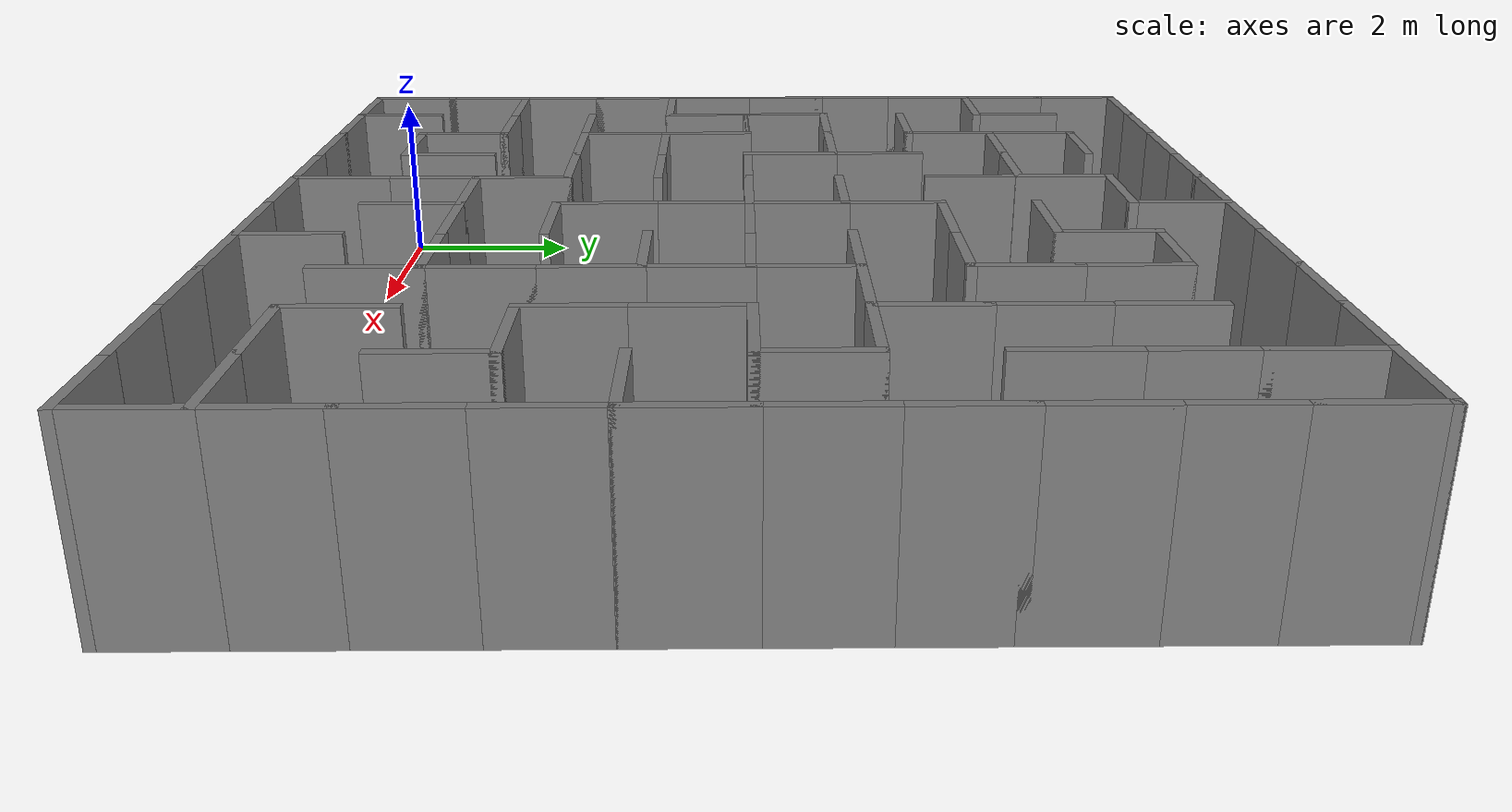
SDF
<sdf version="1.7">
 <model name="procedural_maze">
  <static>true</static>
  <link name="walls">
   <visual name="wall_N_0_vis">
    <pose>-0.5 0.0 1.0 0 0 0</pose>
    <geometry><box><size>0.1 1.1 2.0</size></box></geometry>
    <material>
     <ambient>0.5 0.5 0.5 1</ambient>
     <diffuse>0.5 0.5 0.5 1</diffuse>
     <specular>0.1 0.1 0.1 1</specular>
    </material>
   </visual>
   <collision name="wall_N_0_col">
    <pose>-0.5 0.0 1.0 0 0 0</pose>
    <geometry><box><size>0.1 1.1 2.0</size></box></geometry>
   </collision>
   <visual name="wall_W_1_vis">
    <pose>0.0 -0.5 1.0 0 0 0</pose>
    <geometry><box><size>1.1 0.1 2.0</size></box></geometry>
    <material>
     <ambient>0.5 0.5 0.5 1</ambient>
     <diffuse>0.5 0.5 0.5 1</diffuse>
     <specular>0.1 0.1 0.1 1</specular>
    </material>
   </visual>
   <collision name="wall_W_1_col">
    <pose>0.0 -0.5 1.0 0 0 0</pose>
    <geometry><box><size>1.1 0.1 2.0</size></box></geometry>
   </collision>
   <visual name="wall_S_2_vis">
    <pose>0.5 0.0 1.0 0 0 0</pose>
    <geometry><box><size>0.1 1.1 2.0</size></box></geometry>
    <material>
     <ambient>0.5 0.5 0.5 1</ambient>
     <diffuse>0.5 0.5 0.5 1</diffuse>
     <specular>0.1 0.1 0.1 1</specular>
    </material>
   </visual>
   <collision name="wall_S_2_col">
    <pose>0.5 0.0 1.0 0 0 0</pose>
    <geometry><box><size>0.1 1.1 2.0</size></box></geometry>
   </collision>
   <visual name="wall_N_3_vis">
    <pose>-0.5 1.0 1.0 0 0 0</pose>
    <geometry><box><size>0.1 1.1 2.0</size></box></geometry>
    <material>
     <ambient>0.5 0.5 0.5 1</ambient>
     <diffuse>0.5 0.5 0.5 1</diffuse>
     <specular>0.1 0.1 0.1 1</specular>
    </material>
   </visual>
   <collision name="wall_N_3_col">
    <pose>-0.5 1.0 1.0 0 0 0</pose>
    <geometry><box><size>0.1 1.1 2.0</size></box></geometry>
   </collision>
   <visual name="wall_E_4_vis">
    <pose>0.0 1.5 1.0 0 0 0</pose>
    <geometry><box><size>1.1 0.1 2.0</size></box></geometry>
    <material>
     <ambient>0.5 0.5 0.5 1</ambient>
     <diffuse>0.5 0.5 0.5 1</diffuse>
     <specular>0.1 0.1 0.1 1</specular>
    </material>
   </visual>
   <collision name="wall_E_4_col">
    <pose>0.0 1.5 1.0 0 0 0</pose>
    <geometry><box><size>1.1 0.1 2.0</size></box></geometry>
   </collision>
   <visual name="wall_N_5_vis">
    <pose>-0.5 2.0 1.0 0 0 0</pose>
    <geometry><box><size>0.1 1.1 2.0</size></box></geometry>
    <material>
     <ambient>0.5 0.5 0.5 1</ambient>
     <diffuse>0.5 0.5 0.5 1</diffuse>
     <specular>0.1 0.1 0.1 1</specular>
    </material>
   </visual>
   <collision name="wall_N_5_col">
    <pose>-0.5 2.0 1.0 0 0 0</pose>
    <geometry><box><size>0.1 1.1 2.0</size></box></geometry>
   </collision>
   <visual name="wall_N_6_vis">
    <pose>-0.5 3.0 1.0 0 0 0</pose>
    <geometry><box><size>0.1 1.1 2.0</size></box></geometry>
    <material>
     <ambient>0.5 0.5 0.5 1</ambient>
     <diffuse>0.5 0.5 0.5 1</diffuse>
     <specular>0.1 0.1 0.1 1</specular>
    </material>
   </visual>
   <collision name="wall_N_6_col">
    <pose>-0.5 3.0 1.0 0 0 0</pose>
    <geometry><box><size>0.1 1.1 2.0</size></box></geometry>
   </collision>
   <visual name="wall_E_7_vis">
    <pose>0.0 3.5 1.0 0 0 0</pose>
    <geometry><box><size>1.1 0.1 2.0</size></box></geometry>
    <material>
     <ambient>0.5 0.5 0.5 1</ambient>
     <diffuse>0.5 0.5 0.5 1</diffuse>
     <specular>0.1 0.1 0.1 1</specular>
    </material>
   </visual>
   <collision name="wall_E_7_col">
    <pose>0.0 3.5 1.0 0 0 0</pose>
    <geometry><box><size>1.1 0.1 2.0</size></box></geometry>
   </collision>
   <visual name="wall_N_8_vis">
    <pose>-0.5 4.0 1.0 0 0 0</pose>
    <geometry><box><size>0.1 1.1 2.0</size></box></geometry>
    <material>
     <ambient>0.5 0.5 0.5 1</ambient>
     <diffuse>0.5 0.5 0.5 1</diffuse>
     <specular>0.1 0.1 0.1 1</specular>
    </material>
   </visual>
   <collision name="wall_N_8_col">
    <pose>-0.5 4.0 1.0 0 0 0</pose>
    <geometry><box><size>0.1 1.1 2.0</size></box></geometry>
   </collision>
   <visual name="wall_S_9_vis">
    <pose>0.5 4.0 1.0 0 0 0</pose>
    <geometry><box><size>0.1 1.1 2.0</size></box></geometry>
    <material>
     <ambient>0.5 0.5 0.5 1</ambient>
     <diffuse>0.5 0.5 0.5 1</diffuse>
     <specular>0.1 0.1 0.1 1</specular>
    </material>
   </visual>
   <collision name="wall_S_9_col">
    <pose>0.5 4.0 1.0 0 0 0</pose>
    <geometry><box><size>0.1 1.1 2.0</size></box></geometry>
   </collision>
   <visual name="wall_N_10_vis">
    <pose>-0.5 5.0 1.0 0 0 0</pose>
    <geometry><box><size>0.1 1.1 2.0</size></box></geometry>
    <material>
     <ambient>0.5 0.5 0.5 1</ambient>
     <diffuse>0.5 0.5 0.5 1</diffuse>
     <specular>0.1 0.1 0.1 1</specular>
    </material>
   </visual>
   <collision name="wall_N_10_col">
    <pose>-0.5 5.0 1.0 0 0 0</pose>
    <geometry><box><size>0.1 1.1 2.0</size></box></geometry>
   </collision>
   <visual name="wall_S_11_vis">
    <pose>0.5 5.0 1.0 0 0 0</pose>
    <geometry><box><size>0.1 1.1 2.0</size></box></geometry>
    <material>
     <ambient>0.5 0.5 0.5 1</ambient>
     <diffuse>0.5 0.5 0.5 1</diffuse>
     <specular>0.1 0.1 0.1 1</specular>
    </material>
   </visual>
   <collision name="wall_S_11_col">
    <pose>0.5 5.0 1.0 0 0 0</pose>
    <geometry><box><size>0.1 1.1 2.0</size></box></geometry>
   </collision>
   <visual name="wall_N_12_vis">
    <pose>-0.5 6.0 1.0 0 0 0</pose>
    <geometry><box><size>0.1 1.1 2.0</size></box></geometry>
    <material>
     <ambient>0.5 0.5 0.5 1</ambient>
     <diffuse>0.5 0.5 0.5 1</diffuse>
     <specular>0.1 0.1 0.1 1</specular>
    </material>
   </visual>
   <collision name="wall_N_12_col">
    <pose>-0.5 6.0 1.0 0 0 0</pose>
    <geometry><box><size>0.1 1.1 2.0</size></box></geometry>
   </collision>
   <visual name="wall_N_13_vis">
    <pose>-0.5 7.0 1.0 0 0 0</pose>
    <geometry><box><size>0.1 1.1 2.0</size></box></geometry>
    <material>
     <ambient>0.5 0.5 0.5 1</ambient>
     <diffuse>0.5 0.5 0.5 1</diffuse>
     <specular>0.1 0.1 0.1 1</specular>
    </material>
   </visual>
   <collision name="wall_N_13_col">
    <pose>-0.5 7.0 1.0 0 0 0</pose>
    <geometry><box><size>0.1 1.1 2.0</size></box></geometry>
   </collision>
   <visual name="wall_E_14_vis">
    <pose>0.0 7.5 1.0 0 0 0</pose>
    <geometry><box><size>1.1 0.1 2.0</size></box></geometry>
    <material>
     <ambient>0.5 0.5 0.5 1</ambient>
     <diffuse>0.5 0.5 0.5 1</diffuse>
     <specular>0.1 0.1 0.1 1</specular>
    </material>
   </visual>
   <collision name="wall_E_14_col">
    <pose>0.0 7.5 1.0 0 0 0</pose>
    <geometry><box><size>1.1 0.1 2.0</size></box></geometry>
   </collision>
   <visual name="wall_N_15_vis">
    <pose>-0.5 8.0 1.0 0 0 0</pose>
    <geometry><box><size>0.1 1.1 2.0</size></box></geometry>
    <material>
     <ambient>0.5 0.5 0.5 1</ambient>
     <diffuse>0.5 0.5 0.5 1</diffuse>
     <specular>0.1 0.1 0.1 1</specular>
    </material>
   </visual>
   <collision name="wall_N_15_col">
    <pose>-0.5 8.0 1.0 0 0 0</pose>
    <geometry><box><size>0.1 1.1 2.0</size></box></geometry>
   </collision>
   <visual name="wall_S_16_vis">
    <pose>0.5 8.0 1.0 0 0 0</pose>
    <geometry><box><size>0.1 1.1 2.0</size></box></geometry>
    <material>
     <ambient>0.5 0.5 0.5 1</ambient>
     <diffuse>0.5 0.5 0.5 1</diffuse>
     <specular>0.1 0.1 0.1 1</specular>
    </material>
   </visual>
   <collision name="wall_S_16_col">
    <pose>0.5 8.0 1.0 0 0 0</pose>
    <geometry><box><size>0.1 1.1 2.0</size></box></geometry>
   </collision>
   <visual name="wall_N_17_vis">
    <pose>-0.5 9.0 1.0 0 0 0</pose>
    <geometry><box><size>0.1 1.1 2.0</size></box></geometry>
    <material>
     <ambient>0.5 0.5 0.5 1</ambient>
     <diffuse>0.5 0.5 0.5 1</diffuse>
     <specular>0.1 0.1 0.1 1</specular>
    </material>
   </visual>
   <collision name="wall_N_17_col">
    <pose>-0.5 9.0 1.0 0 0 0</pose>
    <geometry><box><size>0.1 1.1 2.0</size></box></geometry>
   </collision>
   <visual name="wall_E_18_vis">
    <pose>0.0 9.5 1.0 0 0 0</pose>
    <geometry><box><size>1.1 0.1 2.0</size></box></geometry>
    <material>
     <ambient>0.5 0.5 0.5 1</ambient>
     <diffuse>0.5 0.5 0.5 1</diffuse>
     <specular>0.1 0.1 0.1 1</specular>
    </material>
   </visual>
   <collision name="wall_E_18_col">
    <pose>0.0 9.5 1.0 0 0 0</pose>
    <geometry><box><size>1.1 0.1 2.0</size></box></geometry>
   </collision>
   <visual name="wall_W_19_vis">
    <pose>1.0 -0.5 1.0 0 0 0</pose>
    <geometry><box><size>1.1 0.1 2.0</size></box></geometry>
    <material>
     <ambient>0.5 0.5 0.5 1</ambient>
     <diffuse>0.5 0.5 0.5 1</diffuse>
     <specular>0.1 0.1 0.1 1</specular>
    </material>
   </visual>
   <collision name="wall_W_19_col">
    <pose>1.0 -0.5 1.0 0 0 0</pose>
    <geometry><box><size>1.1 0.1 2.0</size></box></geometry>
   </collision>
   <visual name="wall_S_20_vis">
    <pose>1.5 1.0 1.0 0 0 0</pose>
    <geometry><box><size>0.1 1.1 2.0</size></box></geometry>
    <material>
     <ambient>0.5 0.5 0.5 1</ambient>
     <diffuse>0.5 0.5 0.5 1</diffuse>
     <specular>0.1 0.1 0.1 1</specular>
    </material>
   </visual>
   <collision name="wall_S_20_col">
    <pose>1.5 1.0 1.0 0 0 0</pose>
    <geometry><box><size>0.1 1.1 2.0</size></box></geometry>
   </collision>
   <visual name="wall_E_21_vis">
    <pose>1.0 1.5 1.0 0 0 0</pose>
    <geometry><box><size>1.1 0.1 2.0</size></box></geometry>
    <material>
     <ambient>0.5 0.5 0.5 1</ambient>
     <diffuse>0.5 0.5 0.5 1</diffuse>
     <specular>0.1 0.1 0.1 1</specular>
    </material>
   </visual>
   <collision name="wall_E_21_col">
    <pose>1.0 1.5 1.0 0 0 0</pose>
    <geometry><box><size>1.1 0.1 2.0</size></box></geometry>
   </collision>
   <visual name="wall_E_22_vis">
    <pose>1.0 2.5 1.0 0 0 0</pose>
    <geometry><box><size>1.1 0.1 2.0</size></box></geometry>
    <material>
     <ambient>0.5 0.5 0.5 1</ambient>
     <diffuse>0.5 0.5 0.5 1</diffuse>
     <specular>0.1 0.1 0.1 1</specular>
    </material>
   </visual>
   <collision name="wall_E_22_col">
    <pose>1.0 2.5 1.0 0 0 0</pose>
    <geometry><box><size>1.1 0.1 2.0</size></box></geometry>
   </collision>
   <visual name="wall_S_23_vis">
    <pose>1.5 3.0 1.0 0 0 0</pose>
    <geometry><box><size>0.1 1.1 2.0</size></box></geometry>
    <material>
     <ambient>0.5 0.5 0.5 1</ambient>
     <diffuse>0.5 0.5 0.5 1</diffuse>
     <specular>0.1 0.1 0.1 1</specular>
    </material>
   </visual>
   <collision name="wall_S_23_col">
    <pose>1.5 3.0 1.0 0 0 0</pose>
    <geometry><box><size>0.1 1.1 2.0</size></box></geometry>
   </collision>
   <visual name="wall_S_24_vis">
    <pose>1.5 4.0 1.0 0 0 0</pose>
    <geometry><box><size>0.1 1.1 2.0</size></box></geometry>
    <material>
     <ambient>0.5 0.5 0.5 1</ambient>
     <diffuse>0.5 0.5 0.5 1</diffuse>
     <specular>0.1 0.1 0.1 1</specular>
    </material>
   </visual>
   <collision name="wall_S_24_col">
    <pose>1.5 4.0 1.0 0 0 0</pose>
    <geometry><box><size>0.1 1.1 2.0</size></box></geometry>
   </collision>
   <visual name="wall_E_25_vis">
    <pose>1.0 5.5 1.0 0 0 0</pose>
    <geometry><box><size>1.1 0.1 2.0</size></box></geometry>
    <material>
     <ambient>0.5 0.5 0.5 1</ambient>
     <diffuse>0.5 0.5 0.5 1</diffuse>
     <specular>0.1 0.1 0.1 1</specular>
    </material>
   </visual>
   <collision name="wall_E_25_col">
    <pose>1.0 5.5 1.0 0 0 0</pose>
    <geometry><box><size>1.1 0.1 2.0</size></box></geometry>
   </collision>
   <visual name="wall_E_26_vis">
    <pose>1.0 6.5 1.0 0 0 0</pose>
    <geometry><box><size>1.1 0.1 2.0</size></box></geometry>
    <material>
     <ambient>0.5 0.5 0.5 1</ambient>
     <diffuse>0.5 0.5 0.5 1</diffuse>
     <specular>0.1 0.1 0.1 1</specular>
    </material>
   </visual>
   <collision name="wall_E_26_col">
    <pose>1.0 6.5 1.0 0 0 0</pose>
    <geometry><box><size>1.1 0.1 2.0</size></box></geometry>
   </collision>
   <visual name="wall_S_27_vis">
    <pose>1.5 7.0 1.0 0 0 0</pose>
    <geometry><box><size>0.1 1.1 2.0</size></box></geometry>
    <material>
     <ambient>0.5 0.5 0.5 1</ambient>
     <diffuse>0.5 0.5 0.5 1</diffuse>
     <specular>0.1 0.1 0.1 1</specular>
    </material>
   </visual>
   <collision name="wall_S_27_col">
    <pose>1.5 7.0 1.0 0 0 0</pose>
    <geometry><box><size>0.1 1.1 2.0</size></box></geometry>
   </collision>
   <visual name="wall_S_28_vis">
    <pose>1.5 8.0 1.0 0 0 0</pose>
    <geometry><box><size>0.1 1.1 2.0</size></box></geometry>
    <material>
     <ambient>0.5 0.5 0.5 1</ambient>
     <diffuse>0.5 0.5 0.5 1</diffuse>
     <specular>0.1 0.1 0.1 1</specular>
    </material>
   </visual>
   <collision name="wall_S_28_col">
    <pose>1.5 8.0 1.0 0 0 0</pose>
    <geometry><box><size>0.1 1.1 2.0</size></box></geometry>
   </collision>
   <visual name="wall_E_29_vis">
    <pose>1.0 9.5 1.0 0 0 0</pose>
    <geometry><box><size>1.1 0.1 2.0</size></box></geometry>
    <material>
     <ambient>0.5 0.5 0.5 1</ambient>
     <diffuse>0.5 0.5 0.5 1</diffuse>
     <specular>0.1 0.1 0.1 1</specular>
    </material>
   </visual>
   <collision name="wall_E_29_col">
    <pose>1.0 9.5 1.0 0 0 0</pose>
    <geometry><box><size>1.1 0.1 2.0</size></box></geometry>
   </collision>
   <visual name="wall_W_30_vis">
    <pose>2.0 -0.5 1.0 0 0 0</pose>
    <geometry><box><size>1.1 0.1 2.0</size></box></geometry>
    <material>
     <ambient>0.5 0.5 0.5 1</ambient>
     <diffuse>0.5 0.5 0.5 1</diffuse>
     <specular>0.1 0.1 0.1 1</specular>
    </material>
   </visual>
   <collision name="wall_W_30_col">
    <pose>2.0 -0.5 1.0 0 0 0</pose>
    <geometry><box><size>1.1 0.1 2.0</size></box></geometry>
   </collision>
   <visual name="wall_E_31_vis">
    <pose>2.0 0.5 1.0 0 0 0</pose>
    <geometry><box><size>1.1 0.1 2.0</size></box></geometry>
    <material>
     <ambient>0.5 0.5 0.5 1</ambient>
     <diffuse>0.5 0.5 0.5 1</diffuse>
     <specular>0.1 0.1 0.1 1</specular>
    </material>
   </visual>
   <collision name="wall_E_31_col">
    <pose>2.0 0.5 1.0 0 0 0</pose>
    <geometry><box><size>1.1 0.1 2.0</size></box></geometry>
   </collision>
   <visual name="wall_S_32_vis">
    <pose>2.5 1.0 1.0 0 0 0</pose>
    <geometry><box><size>0.1 1.1 2.0</size></box></geometry>
    <material>
     <ambient>0.5 0.5 0.5 1</ambient>
     <diffuse>0.5 0.5 0.5 1</diffuse>
     <specular>0.1 0.1 0.1 1</specular>
    </material>
   </visual>
   <collision name="wall_S_32_col">
    <pose>2.5 1.0 1.0 0 0 0</pose>
    <geometry><box><size>0.1 1.1 2.0</size></box></geometry>
   </collision>
   <visual name="wall_E_33_vis">
    <pose>2.0 2.5 1.0 0 0 0</pose>
    <geometry><box><size>1.1 0.1 2.0</size></box></geometry>
    <material>
     <ambient>0.5 0.5 0.5 1</ambient>
     <diffuse>0.5 0.5 0.5 1</diffuse>
     <specular>0.1 0.1 0.1 1</specular>
    </material>
   </visual>
   <collision name="wall_E_33_col">
    <pose>2.0 2.5 1.0 0 0 0</pose>
    <geometry><box><size>1.1 0.1 2.0</size></box></geometry>
   </collision>
   <visual name="wall_E_34_vis">
    <pose>2.0 3.5 1.0 0 0 0</pose>
    <geometry><box><size>1.1 0.1 2.0</size></box></geometry>
    <material>
     <ambient>0.5 0.5 0.5 1</ambient>
     <diffuse>0.5 0.5 0.5 1</diffuse>
     <specular>0.1 0.1 0.1 1</specular>
    </material>
   </visual>
   <collision name="wall_E_34_col">
    <pose>2.0 3.5 1.0 0 0 0</pose>
    <geometry><box><size>1.1 0.1 2.0</size></box></geometry>
   </collision>
   <visual name="wall_S_35_vis">
    <pose>2.5 5.0 1.0 0 0 0</pose>
    <geometry><box><size>0.1 1.1 2.0</size></box></geometry>
    <material>
     <ambient>0.5 0.5 0.5 1</ambient>
     <diffuse>0.5 0.5 0.5 1</diffuse>
     <specular>0.1 0.1 0.1 1</specular>
    </material>
   </visual>
   <collision name="wall_S_35_col">
    <pose>2.5 5.0 1.0 0 0 0</pose>
    <geometry><box><size>0.1 1.1 2.0</size></box></geometry>
   </collision>
   <visual name="wall_E_36_vis">
    <pose>2.0 5.5 1.0 0 0 0</pose>
    <geometry><box><size>1.1 0.1 2.0</size></box></geometry>
    <material>
     <ambient>0.5 0.5 0.5 1</ambient>
     <diffuse>0.5 0.5 0.5 1</diffuse>
     <specular>0.1 0.1 0.1 1</specular>
    </material>
   </visual>
   <collision name="wall_E_36_col">
    <pose>2.0 5.5 1.0 0 0 0</pose>
    <geometry><box><size>1.1 0.1 2.0</size></box></geometry>
   </collision>
   <visual name="wall_S_37_vis">
    <pose>2.5 6.0 1.0 0 0 0</pose>
    <geometry><box><size>0.1 1.1 2.0</size></box></geometry>
    <material>
     <ambient>0.5 0.5 0.5 1</ambient>
     <diffuse>0.5 0.5 0.5 1</diffuse>
     <specular>0.1 0.1 0.1 1</specular>
    </material>
   </visual>
   <collision name="wall_S_37_col">
    <pose>2.5 6.0 1.0 0 0 0</pose>
    <geometry><box><size>0.1 1.1 2.0</size></box></geometry>
   </collision>
   <visual name="wall_E_38_vis">
    <pose>2.0 7.5 1.0 0 0 0</pose>
    <geometry><box><size>1.1 0.1 2.0</size></box></geometry>
    <material>
     <ambient>0.5 0.5 0.5 1</ambient>
     <diffuse>0.5 0.5 0.5 1</diffuse>
     <specular>0.1 0.1 0.1 1</specular>
    </material>
   </visual>
   <collision name="wall_E_38_col">
    <pose>2.0 7.5 1.0 0 0 0</pose>
    <geometry><box><size>1.1 0.1 2.0</size></box></geometry>
   </collision>
   <visual name="wall_E_39_vis">
    <pose>2.0 8.5 1.0 0 0 0</pose>
    <geometry><box><size>1.1 0.1 2.0</size></box></geometry>
    <material>
     <ambient>0.5 0.5 0.5 1</ambient>
     <diffuse>0.5 0.5 0.5 1</diffuse>
     <specular>0.1 0.1 0.1 1</specular>
    </material>
   </visual>
   <collision name="wall_E_39_col">
    <pose>2.0 8.5 1.0 0 0 0</pose>
    <geometry><box><size>1.1 0.1 2.0</size></box></geometry>
   </collision>
   <visual name="wall_E_40_vis">
    <pose>2.0 9.5 1.0 0 0 0</pose>
    <geometry><box><size>1.1 0.1 2.0</size></box></geometry>
    <material>
     <ambient>0.5 0.5 0.5 1</ambient>
     <diffuse>0.5 0.5 0.5 1</diffuse>
     <specular>0.1 0.1 0.1 1</specular>
    </material>
   </visual>
   <collision name="wall_E_40_col">
    <pose>2.0 9.5 1.0 0 0 0</pose>
    <geometry><box><size>1.1 0.1 2.0</size></box></geometry>
   </collision>
   <visual name="wall_W_41_vis">
    <pose>3.0 -0.5 1.0 0 0 0</pose>
    <geometry><box><size>1.1 0.1 2.0</size></box></geometry>
    <material>
     <ambient>0.5 0.5 0.5 1</ambient>
     <diffuse>0.5 0.5 0.5 1</diffuse>
     <specular>0.1 0.1 0.1 1</specular>
    </material>
   </visual>
   <collision name="wall_W_41_col">
    <pose>3.0 -0.5 1.0 0 0 0</pose>
    <geometry><box><size>1.1 0.1 2.0</size></box></geometry>
   </collision>
   <visual name="wall_S_42_vis">
    <pose>3.5 0.0 1.0 0 0 0</pose>
    <geometry><box><size>0.1 1.1 2.0</size></box></geometry>
    <material>
     <ambient>0.5 0.5 0.5 1</ambient>
     <diffuse>0.5 0.5 0.5 1</diffuse>
     <specular>0.1 0.1 0.1 1</specular>
    </material>
   </visual>
   <collision name="wall_S_42_col">
    <pose>3.5 0.0 1.0 0 0 0</pose>
    <geometry><box><size>0.1 1.1 2.0</size></box></geometry>
   </collision>
   <visual name="wall_S_43_vis">
    <pose>3.5 1.0 1.0 0 0 0</pose>
    <geometry><box><size>0.1 1.1 2.0</size></box></geometry>
    <material>
     <ambient>0.5 0.5 0.5 1</ambient>
     <diffuse>0.5 0.5 0.5 1</diffuse>
     <specular>0.1 0.1 0.1 1</specular>
    </material>
   </visual>
   <collision name="wall_S_43_col">
    <pose>3.5 1.0 1.0 0 0 0</pose>
    <geometry><box><size>0.1 1.1 2.0</size></box></geometry>
   </collision>
   <visual name="wall_S_44_vis">
    <pose>3.5 2.0 1.0 0 0 0</pose>
    <geometry><box><size>0.1 1.1 2.0</size></box></geometry>
    <material>
     <ambient>0.5 0.5 0.5 1</ambient>
     <diffuse>0.5 0.5 0.5 1</diffuse>
     <specular>0.1 0.1 0.1 1</specular>
    </material>
   </visual>
   <collision name="wall_S_44_col">
    <pose>3.5 2.0 1.0 0 0 0</pose>
    <geometry><box><size>0.1 1.1 2.0</size></box></geometry>
   </collision>
   <visual name="wall_E_45_vis">
    <pose>3.0 2.5 1.0 0 0 0</pose>
    <geometry><box><size>1.1 0.1 2.0</size></box></geometry>
    <material>
     <ambient>0.5 0.5 0.5 1</ambient>
     <diffuse>0.5 0.5 0.5 1</diffuse>
     <specular>0.1 0.1 0.1 1</specular>
    </material>
   </visual>
   <collision name="wall_E_45_col">
    <pose>3.0 2.5 1.0 0 0 0</pose>
    <geometry><box><size>1.1 0.1 2.0</size></box></geometry>
   </collision>
   <visual name="wall_E_46_vis">
    <pose>3.0 3.5 1.0 0 0 0</pose>
    <geometry><box><size>1.1 0.1 2.0</size></box></geometry>
    <material>
     <ambient>0.5 0.5 0.5 1</ambient>
     <diffuse>0.5 0.5 0.5 1</diffuse>
     <specular>0.1 0.1 0.1 1</specular>
    </material>
   </visual>
   <collision name="wall_E_46_col">
    <pose>3.0 3.5 1.0 0 0 0</pose>
    <geometry><box><size>1.1 0.1 2.0</size></box></geometry>
   </collision>
   <visual name="wall_E_47_vis">
    <pose>3.0 4.5 1.0 0 0 0</pose>
    <geometry><box><size>1.1 0.1 2.0</size></box></geometry>
    <material>
     <ambient>0.5 0.5 0.5 1</ambient>
     <diffuse>0.5 0.5 0.5 1</diffuse>
     <specular>0.1 0.1 0.1 1</specular>
    </material>
   </visual>
   <collision name="wall_E_47_col">
    <pose>3.0 4.5 1.0 0 0 0</pose>
    <geometry><box><size>1.1 0.1 2.0</size></box></geometry>
   </collision>
   <visual name="wall_S_48_vis">
    <pose>3.5 7.0 1.0 0 0 0</pose>
    <geometry><box><size>0.1 1.1 2.0</size></box></geometry>
    <material>
     <ambient>0.5 0.5 0.5 1</ambient>
     <diffuse>0.5 0.5 0.5 1</diffuse>
     <specular>0.1 0.1 0.1 1</specular>
    </material>
   </visual>
   <collision name="wall_S_48_col">
    <pose>3.5 7.0 1.0 0 0 0</pose>
    <geometry><box><size>0.1 1.1 2.0</size></box></geometry>
   </collision>
   <visual name="wall_E_49_vis">
    <pose>3.0 7.5 1.0 0 0 0</pose>
    <geometry><box><size>1.1 0.1 2.0</size></box></geometry>
    <material>
     <ambient>0.5 0.5 0.5 1</ambient>
     <diffuse>0.5 0.5 0.5 1</diffuse>
     <specular>0.1 0.1 0.1 1</specular>
    </material>
   </visual>
   <collision name="wall_E_49_col">
    <pose>3.0 7.5 1.0 0 0 0</pose>
    <geometry><box><size>1.1 0.1 2.0</size></box></geometry>
   </collision>
   <visual name="wall_S_50_vis">
    <pose>3.5 8.0 1.0 0 0 0</pose>
    <geometry><box><size>0.1 1.1 2.0</size></box></geometry>
    <material>
     <ambient>0.5 0.5 0.5 1</ambient>
     <diffuse>0.5 0.5 0.5 1</diffuse>
     <specular>0.1 0.1 0.1 1</specular>
    </material>
   </visual>
   <collision name="wall_S_50_col">
    <pose>3.5 8.0 1.0 0 0 0</pose>
    <geometry><box><size>0.1 1.1 2.0</size></box></geometry>
   </collision>
   <visual name="wall_E_51_vis">
    <pose>3.0 9.5 1.0 0 0 0</pose>
    <geometry><box><size>1.1 0.1 2.0</size></box></geometry>
    <material>
     <ambient>0.5 0.5 0.5 1</ambient>
     <diffuse>0.5 0.5 0.5 1</diffuse>
     <specular>0.1 0.1 0.1 1</specular>
    </material>
   </visual>
   <collision name="wall_E_51_col">
    <pose>3.0 9.5 1.0 0 0 0</pose>
    <geometry><box><size>1.1 0.1 2.0</size></box></geometry>
   </collision>
   <visual name="wall_W_52_vis">
    <pose>4.0 -0.5 1.0 0 0 0</pose>
    <geometry><box><size>1.1 0.1 2.0</size></box></geometry>
    <material>
     <ambient>0.5 0.5 0.5 1</ambient>
     <diffuse>0.5 0.5 0.5 1</diffuse>
     <specular>0.1 0.1 0.1 1</specular>
    </material>
   </visual>
   <collision name="wall_W_52_col">
    <pose>4.0 -0.5 1.0 0 0 0</pose>
    <geometry><box><size>1.1 0.1 2.0</size></box></geometry>
   </collision>
   <visual name="wall_S_53_vis">
    <pose>4.5 1.0 1.0 0 0 0</pose>
    <geometry><box><size>0.1 1.1 2.0</size></box></geometry>
    <material>
     <ambient>0.5 0.5 0.5 1</ambient>
     <diffuse>0.5 0.5 0.5 1</diffuse>
     <specular>0.1 0.1 0.1 1</specular>
    </material>
   </visual>
   <collision name="wall_S_53_col">
    <pose>4.5 1.0 1.0 0 0 0</pose>
    <geometry><box><size>0.1 1.1 2.0</size></box></geometry>
   </collision>
   <visual name="wall_E_54_vis">
    <pose>4.0 1.5 1.0 0 0 0</pose>
    <geometry><box><size>1.1 0.1 2.0</size></box></geometry>
    <material>
     <ambient>0.5 0.5 0.5 1</ambient>
     <diffuse>0.5 0.5 0.5 1</diffuse>
     <specular>0.1 0.1 0.1 1</specular>
    </material>
   </visual>
   <collision name="wall_E_54_col">
    <pose>4.0 1.5 1.0 0 0 0</pose>
    <geometry><box><size>1.1 0.1 2.0</size></box></geometry>
   </collision>
   <visual name="wall_S_55_vis">
    <pose>4.5 3.0 1.0 0 0 0</pose>
    <geometry><box><size>0.1 1.1 2.0</size></box></geometry>
    <material>
     <ambient>0.5 0.5 0.5 1</ambient>
     <diffuse>0.5 0.5 0.5 1</diffuse>
     <specular>0.1 0.1 0.1 1</specular>
    </material>
   </visual>
   <collision name="wall_S_55_col">
    <pose>4.5 3.0 1.0 0 0 0</pose>
    <geometry><box><size>0.1 1.1 2.0</size></box></geometry>
   </collision>
   <visual name="wall_S_56_vis">
    <pose>4.5 4.0 1.0 0 0 0</pose>
    <geometry><box><size>0.1 1.1 2.0</size></box></geometry>
    <material>
     <ambient>0.5 0.5 0.5 1</ambient>
     <diffuse>0.5 0.5 0.5 1</diffuse>
     <specular>0.1 0.1 0.1 1</specular>
    </material>
   </visual>
   <collision name="wall_S_56_col">
    <pose>4.5 4.0 1.0 0 0 0</pose>
    <geometry><box><size>0.1 1.1 2.0</size></box></geometry>
   </collision>
   <visual name="wall_E_57_vis">
    <pose>4.0 4.5 1.0 0 0 0</pose>
    <geometry><box><size>1.1 0.1 2.0</size></box></geometry>
    <material>
     <ambient>0.5 0.5 0.5 1</ambient>
     <diffuse>0.5 0.5 0.5 1</diffuse>
     <specular>0.1 0.1 0.1 1</specular>
    </material>
   </visual>
   <collision name="wall_E_57_col">
    <pose>4.0 4.5 1.0 0 0 0</pose>
    <geometry><box><size>1.1 0.1 2.0</size></box></geometry>
   </collision>
   <visual name="wall_S_58_vis">
    <pose>4.5 5.0 1.0 0 0 0</pose>
    <geometry><box><size>0.1 1.1 2.0</size></box></geometry>
    <material>
     <ambient>0.5 0.5 0.5 1</ambient>
     <diffuse>0.5 0.5 0.5 1</diffuse>
     <specular>0.1 0.1 0.1 1</specular>
    </material>
   </visual>
   <collision name="wall_S_58_col">
    <pose>4.5 5.0 1.0 0 0 0</pose>
    <geometry><box><size>0.1 1.1 2.0</size></box></geometry>
   </collision>
   <visual name="wall_E_59_vis">
    <pose>4.0 5.5 1.0 0 0 0</pose>
    <geometry><box><size>1.1 0.1 2.0</size></box></geometry>
    <material>
     <ambient>0.5 0.5 0.5 1</ambient>
     <diffuse>0.5 0.5 0.5 1</diffuse>
     <specular>0.1 0.1 0.1 1</specular>
    </material>
   </visual>
   <collision name="wall_E_59_col">
    <pose>4.0 5.5 1.0 0 0 0</pose>
    <geometry><box><size>1.1 0.1 2.0</size></box></geometry>
   </collision>
   <visual name="wall_S_60_vis">
    <pose>4.5 6.0 1.0 0 0 0</pose>
    <geometry><box><size>0.1 1.1 2.0</size></box></geometry>
    <material>
     <ambient>0.5 0.5 0.5 1</ambient>
     <diffuse>0.5 0.5 0.5 1</diffuse>
     <specular>0.1 0.1 0.1 1</specular>
    </material>
   </visual>
   <collision name="wall_S_60_col">
    <pose>4.5 6.0 1.0 0 0 0</pose>
    <geometry><box><size>0.1 1.1 2.0</size></box></geometry>
   </collision>
   <visual name="wall_E_61_vis">
    <pose>4.0 8.5 1.0 0 0 0</pose>
    <geometry><box><size>1.1 0.1 2.0</size></box></geometry>
    <material>
     <ambient>0.5 0.5 0.5 1</ambient>
     <diffuse>0.5 0.5 0.5 1</diffuse>
     <specular>0.1 0.1 0.1 1</specular>
    </material>
   </visual>
   <collision name="wall_E_61_col">
    <pose>4.0 8.5 1.0 0 0 0</pose>
    <geometry><box><size>1.1 0.1 2.0</size></box></geometry>
   </collision>
   <visual name="wall_S_62_vis">
    <pose>4.5 9.0 1.0 0 0 0</pose>
    <geometry><box><size>0.1 1.1 2.0</size></box></geometry>
    <material>
     <ambient>0.5 0.5 0.5 1</ambient>
     <diffuse>0.5 0.5 0.5 1</diffuse>
     <specular>0.1 0.1 0.1 1</specular>
    </material>
   </visual>
   <collision name="wall_S_62_col">
    <pose>4.5 9.0 1.0 0 0 0</pose>
    <geometry><box><size>0.1 1.1 2.0</size></box></geometry>
   </collision>
   <visual name="wall_E_63_vis">
    <pose>4.0 9.5 1.0 0 0 0</pose>
    <geometry><box><size>1.1 0.1 2.0</size></box></geometry>
    <material>
     <ambient>0.5 0.5 0.5 1</ambient>
     <diffuse>0.5 0.5 0.5 1</diffuse>
     <specular>0.1 0.1 0.1 1</specular>
    </material>
   </visual>
   <collision name="wall_E_63_col">
    <pose>4.0 9.5 1.0 0 0 0</pose>
    <geometry><box><size>1.1 0.1 2.0</size></box></geometry>
   </collision>
   <visual name="wall_W_64_vis">
    <pose>5.0 -0.5 1.0 0 0 0</pose>
    <geometry><box><size>1.1 0.1 2.0</size></box></geometry>
    <material>
     <ambient>0.5 0.5 0.5 1</ambient>
     <diffuse>0.5 0.5 0.5 1</diffuse>
     <specular>0.1 0.1 0.1 1</specular>
    </material>
   </visual>
   <collision name="wall_W_64_col">
    <pose>5.0 -0.5 1.0 0 0 0</pose>
    <geometry><box><size>1.1 0.1 2.0</size></box></geometry>
   </collision>
   <visual name="wall_S_65_vis">
    <pose>5.5 0.0 1.0 0 0 0</pose>
    <geometry><box><size>0.1 1.1 2.0</size></box></geometry>
    <material>
     <ambient>0.5 0.5 0.5 1</ambient>
     <diffuse>0.5 0.5 0.5 1</diffuse>
     <specular>0.1 0.1 0.1 1</specular>
    </material>
   </visual>
   <collision name="wall_S_65_col">
    <pose>5.5 0.0 1.0 0 0 0</pose>
    <geometry><box><size>0.1 1.1 2.0</size></box></geometry>
   </collision>
   <visual name="wall_E_66_vis">
    <pose>5.0 1.5 1.0 0 0 0</pose>
    <geometry><box><size>1.1 0.1 2.0</size></box></geometry>
    <material>
     <ambient>0.5 0.5 0.5 1</ambient>
     <diffuse>0.5 0.5 0.5 1</diffuse>
     <specular>0.1 0.1 0.1 1</specular>
    </material>
   </visual>
   <collision name="wall_E_66_col">
    <pose>5.0 1.5 1.0 0 0 0</pose>
    <geometry><box><size>1.1 0.1 2.0</size></box></geometry>
   </collision>
   <visual name="wall_E_67_vis">
    <pose>5.0 2.5 1.0 0 0 0</pose>
    <geometry><box><size>1.1 0.1 2.0</size></box></geometry>
    <material>
     <ambient>0.5 0.5 0.5 1</ambient>
     <diffuse>0.5 0.5 0.5 1</diffuse>
     <specular>0.1 0.1 0.1 1</specular>
    </material>
   </visual>
   <collision name="wall_E_67_col">
    <pose>5.0 2.5 1.0 0 0 0</pose>
    <geometry><box><size>1.1 0.1 2.0</size></box></geometry>
   </collision>
   <visual name="wall_E_68_vis">
    <pose>5.0 4.5 1.0 0 0 0</pose>
    <geometry><box><size>1.1 0.1 2.0</size></box></geometry>
    <material>
     <ambient>0.5 0.5 0.5 1</ambient>
     <diffuse>0.5 0.5 0.5 1</diffuse>
     <specular>0.1 0.1 0.1 1</specular>
    </material>
   </visual>
   <collision name="wall_E_68_col">
    <pose>5.0 4.5 1.0 0 0 0</pose>
    <geometry><box><size>1.1 0.1 2.0</size></box></geometry>
   </collision>
   <visual name="wall_E_69_vis">
    <pose>5.0 6.5 1.0 0 0 0</pose>
    <geometry><box><size>1.1 0.1 2.0</size></box></geometry>
    <material>
     <ambient>0.5 0.5 0.5 1</ambient>
     <diffuse>0.5 0.5 0.5 1</diffuse>
     <specular>0.1 0.1 0.1 1</specular>
    </material>
   </visual>
   <collision name="wall_E_69_col">
    <pose>5.0 6.5 1.0 0 0 0</pose>
    <geometry><box><size>1.1 0.1 2.0</size></box></geometry>
   </collision>
   <visual name="wall_E_70_vis">
    <pose>5.0 7.5 1.0 0 0 0</pose>
    <geometry><box><size>1.1 0.1 2.0</size></box></geometry>
    <material>
     <ambient>0.5 0.5 0.5 1</ambient>
     <diffuse>0.5 0.5 0.5 1</diffuse>
     <specular>0.1 0.1 0.1 1</specular>
    </material>
   </visual>
   <collision name="wall_E_70_col">
    <pose>5.0 7.5 1.0 0 0 0</pose>
    <geometry><box><size>1.1 0.1 2.0</size></box></geometry>
   </collision>
   <visual name="wall_S_71_vis">
    <pose>5.5 8.0 1.0 0 0 0</pose>
    <geometry><box><size>0.1 1.1 2.0</size></box></geometry>
    <material>
     <ambient>0.5 0.5 0.5 1</ambient>
     <diffuse>0.5 0.5 0.5 1</diffuse>
     <specular>0.1 0.1 0.1 1</specular>
    </material>
   </visual>
   <collision name="wall_S_71_col">
    <pose>5.5 8.0 1.0 0 0 0</pose>
    <geometry><box><size>0.1 1.1 2.0</size></box></geometry>
   </collision>
   <visual name="wall_E_72_vis">
    <pose>5.0 9.5 1.0 0 0 0</pose>
    <geometry><box><size>1.1 0.1 2.0</size></box></geometry>
    <material>
     <ambient>0.5 0.5 0.5 1</ambient>
     <diffuse>0.5 0.5 0.5 1</diffuse>
     <specular>0.1 0.1 0.1 1</specular>
    </material>
   </visual>
   <collision name="wall_E_72_col">
    <pose>5.0 9.5 1.0 0 0 0</pose>
    <geometry><box><size>1.1 0.1 2.0</size></box></geometry>
   </collision>
   <visual name="wall_W_73_vis">
    <pose>6.0 -0.5 1.0 0 0 0</pose>
    <geometry><box><size>1.1 0.1 2.0</size></box></geometry>
    <material>
     <ambient>0.5 0.5 0.5 1</ambient>
     <diffuse>0.5 0.5 0.5 1</diffuse>
     <specular>0.1 0.1 0.1 1</specular>
    </material>
   </visual>
   <collision name="wall_W_73_col">
    <pose>6.0 -0.5 1.0 0 0 0</pose>
    <geometry><box><size>1.1 0.1 2.0</size></box></geometry>
   </collision>
   <visual name="wall_S_74_vis">
    <pose>6.5 1.0 1.0 0 0 0</pose>
    <geometry><box><size>0.1 1.1 2.0</size></box></geometry>
    <material>
     <ambient>0.5 0.5 0.5 1</ambient>
     <diffuse>0.5 0.5 0.5 1</diffuse>
     <specular>0.1 0.1 0.1 1</specular>
    </material>
   </visual>
   <collision name="wall_S_74_col">
    <pose>6.5 1.0 1.0 0 0 0</pose>
    <geometry><box><size>0.1 1.1 2.0</size></box></geometry>
   </collision>
   <visual name="wall_E_75_vis">
    <pose>6.0 1.5 1.0 0 0 0</pose>
    <geometry><box><size>1.1 0.1 2.0</size></box></geometry>
    <material>
     <ambient>0.5 0.5 0.5 1</ambient>
     <diffuse>0.5 0.5 0.5 1</diffuse>
     <specular>0.1 0.1 0.1 1</specular>
    </material>
   </visual>
   <collision name="wall_E_75_col">
    <pose>6.0 1.5 1.0 0 0 0</pose>
    <geometry><box><size>1.1 0.1 2.0</size></box></geometry>
   </collision>
   <visual name="wall_S_76_vis">
    <pose>6.5 2.0 1.0 0 0 0</pose>
    <geometry><box><size>0.1 1.1 2.0</size></box></geometry>
    <material>
     <ambient>0.5 0.5 0.5 1</ambient>
     <diffuse>0.5 0.5 0.5 1</diffuse>
     <specular>0.1 0.1 0.1 1</specular>
    </material>
   </visual>
   <collision name="wall_S_76_col">
    <pose>6.5 2.0 1.0 0 0 0</pose>
    <geometry><box><size>0.1 1.1 2.0</size></box></geometry>
   </collision>
   <visual name="wall_S_77_vis">
    <pose>6.5 3.0 1.0 0 0 0</pose>
    <geometry><box><size>0.1 1.1 2.0</size></box></geometry>
    <material>
     <ambient>0.5 0.5 0.5 1</ambient>
     <diffuse>0.5 0.5 0.5 1</diffuse>
     <specular>0.1 0.1 0.1 1</specular>
    </material>
   </visual>
   <collision name="wall_S_77_col">
    <pose>6.5 3.0 1.0 0 0 0</pose>
    <geometry><box><size>0.1 1.1 2.0</size></box></geometry>
   </collision>
   <visual name="wall_E_78_vis">
    <pose>6.0 3.5 1.0 0 0 0</pose>
    <geometry><box><size>1.1 0.1 2.0</size></box></geometry>
    <material>
     <ambient>0.5 0.5 0.5 1</ambient>
     <diffuse>0.5 0.5 0.5 1</diffuse>
     <specular>0.1 0.1 0.1 1</specular>
    </material>
   </visual>
   <collision name="wall_E_78_col">
    <pose>6.0 3.5 1.0 0 0 0</pose>
    <geometry><box><size>1.1 0.1 2.0</size></box></geometry>
   </collision>
   <visual name="wall_S_79_vis">
    <pose>6.5 4.0 1.0 0 0 0</pose>
    <geometry><box><size>0.1 1.1 2.0</size></box></geometry>
    <material>
     <ambient>0.5 0.5 0.5 1</ambient>
     <diffuse>0.5 0.5 0.5 1</diffuse>
     <specular>0.1 0.1 0.1 1</specular>
    </material>
   </visual>
   <collision name="wall_S_79_col">
    <pose>6.5 4.0 1.0 0 0 0</pose>
    <geometry><box><size>0.1 1.1 2.0</size></box></geometry>
   </collision>
   <visual name="wall_S_80_vis">
    <pose>6.5 5.0 1.0 0 0 0</pose>
    <geometry><box><size>0.1 1.1 2.0</size></box></geometry>
    <material>
     <ambient>0.5 0.5 0.5 1</ambient>
     <diffuse>0.5 0.5 0.5 1</diffuse>
     <specular>0.1 0.1 0.1 1</specular>
    </material>
   </visual>
   <collision name="wall_S_80_col">
    <pose>6.5 5.0 1.0 0 0 0</pose>
    <geometry><box><size>0.1 1.1 2.0</size></box></geometry>
   </collision>
   <visual name="wall_E_81_vis">
    <pose>6.0 5.5 1.0 0 0 0</pose>
    <geometry><box><size>1.1 0.1 2.0</size></box></geometry>
    <material>
     <ambient>0.5 0.5 0.5 1</ambient>
     <diffuse>0.5 0.5 0.5 1</diffuse>
     <specular>0.1 0.1 0.1 1</specular>
    </material>
   </visual>
   <collision name="wall_E_81_col">
    <pose>6.0 5.5 1.0 0 0 0</pose>
    <geometry><box><size>1.1 0.1 2.0</size></box></geometry>
   </collision>
   <visual name="wall_E_82_vis">
    <pose>6.0 6.5 1.0 0 0 0</pose>
    <geometry><box><size>1.1 0.1 2.0</size></box></geometry>
    <material>
     <ambient>0.5 0.5 0.5 1</ambient>
     <diffuse>0.5 0.5 0.5 1</diffuse>
     <specular>0.1 0.1 0.1 1</specular>
    </material>
   </visual>
   <collision name="wall_E_82_col">
    <pose>6.0 6.5 1.0 0 0 0</pose>
    <geometry><box><size>1.1 0.1 2.0</size></box></geometry>
   </collision>
   <visual name="wall_S_83_vis">
    <pose>6.5 7.0 1.0 0 0 0</pose>
    <geometry><box><size>0.1 1.1 2.0</size></box></geometry>
    <material>
     <ambient>0.5 0.5 0.5 1</ambient>
     <diffuse>0.5 0.5 0.5 1</diffuse>
     <specular>0.1 0.1 0.1 1</specular>
    </material>
   </visual>
   <collision name="wall_S_83_col">
    <pose>6.5 7.0 1.0 0 0 0</pose>
    <geometry><box><size>0.1 1.1 2.0</size></box></geometry>
   </collision>
   <visual name="wall_S_84_vis">
    <pose>6.5 8.0 1.0 0 0 0</pose>
    <geometry><box><size>0.1 1.1 2.0</size></box></geometry>
    <material>
     <ambient>0.5 0.5 0.5 1</ambient>
     <diffuse>0.5 0.5 0.5 1</diffuse>
     <specular>0.1 0.1 0.1 1</specular>
    </material>
   </visual>
   <collision name="wall_S_84_col">
    <pose>6.5 8.0 1.0 0 0 0</pose>
    <geometry><box><size>0.1 1.1 2.0</size></box></geometry>
   </collision>
   <visual name="wall_E_85_vis">
    <pose>6.0 8.5 1.0 0 0 0</pose>
    <geometry><box><size>1.1 0.1 2.0</size></box></geometry>
    <material>
     <ambient>0.5 0.5 0.5 1</ambient>
     <diffuse>0.5 0.5 0.5 1</diffuse>
     <specular>0.1 0.1 0.1 1</specular>
    </material>
   </visual>
   <collision name="wall_E_85_col">
    <pose>6.0 8.5 1.0 0 0 0</pose>
    <geometry><box><size>1.1 0.1 2.0</size></box></geometry>
   </collision>
   <visual name="wall_E_86_vis">
    <pose>6.0 9.5 1.0 0 0 0</pose>
    <geometry><box><size>1.1 0.1 2.0</size></box></geometry>
    <material>
     <ambient>0.5 0.5 0.5 1</ambient>
     <diffuse>0.5 0.5 0.5 1</diffuse>
     <specular>0.1 0.1 0.1 1</specular>
    </material>
   </visual>
   <collision name="wall_E_86_col">
    <pose>6.0 9.5 1.0 0 0 0</pose>
    <geometry><box><size>1.1 0.1 2.0</size></box></geometry>
   </collision>
   <visual name="wall_W_87_vis">
    <pose>7.0 -0.5 1.0 0 0 0</pose>
    <geometry><box><size>1.1 0.1 2.0</size></box></geometry>
    <material>
     <ambient>0.5 0.5 0.5 1</ambient>
     <diffuse>0.5 0.5 0.5 1</diffuse>
     <specular>0.1 0.1 0.1 1</specular>
    </material>
   </visual>
   <collision name="wall_W_87_col">
    <pose>7.0 -0.5 1.0 0 0 0</pose>
    <geometry><box><size>1.1 0.1 2.0</size></box></geometry>
   </collision>
   <visual name="wall_S_88_vis">
    <pose>7.5 1.0 1.0 0 0 0</pose>
    <geometry><box><size>0.1 1.1 2.0</size></box></geometry>
    <material>
     <ambient>0.5 0.5 0.5 1</ambient>
     <diffuse>0.5 0.5 0.5 1</diffuse>
     <specular>0.1 0.1 0.1 1</specular>
    </material>
   </visual>
   <collision name="wall_S_88_col">
    <pose>7.5 1.0 1.0 0 0 0</pose>
    <geometry><box><size>0.1 1.1 2.0</size></box></geometry>
   </collision>
   <visual name="wall_S_89_vis">
    <pose>7.5 3.0 1.0 0 0 0</pose>
    <geometry><box><size>0.1 1.1 2.0</size></box></geometry>
    <material>
     <ambient>0.5 0.5 0.5 1</ambient>
     <diffuse>0.5 0.5 0.5 1</diffuse>
     <specular>0.1 0.1 0.1 1</specular>
    </material>
   </visual>
   <collision name="wall_S_89_col">
    <pose>7.5 3.0 1.0 0 0 0</pose>
    <geometry><box><size>0.1 1.1 2.0</size></box></geometry>
   </collision>
   <visual name="wall_S_90_vis">
    <pose>7.5 4.0 1.0 0 0 0</pose>
    <geometry><box><size>0.1 1.1 2.0</size></box></geometry>
    <material>
     <ambient>0.5 0.5 0.5 1</ambient>
     <diffuse>0.5 0.5 0.5 1</diffuse>
     <specular>0.1 0.1 0.1 1</specular>
    </material>
   </visual>
   <collision name="wall_S_90_col">
    <pose>7.5 4.0 1.0 0 0 0</pose>
    <geometry><box><size>0.1 1.1 2.0</size></box></geometry>
   </collision>
   <visual name="wall_E_91_vis">
    <pose>7.0 5.5 1.0 0 0 0</pose>
    <geometry><box><size>1.1 0.1 2.0</size></box></geometry>
    <material>
     <ambient>0.5 0.5 0.5 1</ambient>
     <diffuse>0.5 0.5 0.5 1</diffuse>
     <specular>0.1 0.1 0.1 1</specular>
    </material>
   </visual>
   <collision name="wall_E_91_col">
    <pose>7.0 5.5 1.0 0 0 0</pose>
    <geometry><box><size>1.1 0.1 2.0</size></box></geometry>
   </collision>
   <visual name="wall_S_92_vis">
    <pose>7.5 6.0 1.0 0 0 0</pose>
    <geometry><box><size>0.1 1.1 2.0</size></box></geometry>
    <material>
     <ambient>0.5 0.5 0.5 1</ambient>
     <diffuse>0.5 0.5 0.5 1</diffuse>
     <specular>0.1 0.1 0.1 1</specular>
    </material>
   </visual>
   <collision name="wall_S_92_col">
    <pose>7.5 6.0 1.0 0 0 0</pose>
    <geometry><box><size>0.1 1.1 2.0</size></box></geometry>
   </collision>
   <visual name="wall_S_93_vis">
    <pose>7.5 7.0 1.0 0 0 0</pose>
    <geometry><box><size>0.1 1.1 2.0</size></box></geometry>
    <material>
     <ambient>0.5 0.5 0.5 1</ambient>
     <diffuse>0.5 0.5 0.5 1</diffuse>
     <specular>0.1 0.1 0.1 1</specular>
    </material>
   </visual>
   <collision name="wall_S_93_col">
    <pose>7.5 7.0 1.0 0 0 0</pose>
    <geometry><box><size>0.1 1.1 2.0</size></box></geometry>
   </collision>
   <visual name="wall_S_94_vis">
    <pose>7.5 8.0 1.0 0 0 0</pose>
    <geometry><box><size>0.1 1.1 2.0</size></box></geometry>
    <material>
     <ambient>0.5 0.5 0.5 1</ambient>
     <diffuse>0.5 0.5 0.5 1</diffuse>
     <specular>0.1 0.1 0.1 1</specular>
    </material>
   </visual>
   <collision name="wall_S_94_col">
    <pose>7.5 8.0 1.0 0 0 0</pose>
    <geometry><box><size>0.1 1.1 2.0</size></box></geometry>
   </collision>
   <visual name="wall_E_95_vis">
    <pose>7.0 9.5 1.0 0 0 0</pose>
    <geometry><box><size>1.1 0.1 2.0</size></box></geometry>
    <material>
     <ambient>0.5 0.5 0.5 1</ambient>
     <diffuse>0.5 0.5 0.5 1</diffuse>
     <specular>0.1 0.1 0.1 1</specular>
    </material>
   </visual>
   <collision name="wall_E_95_col">
    <pose>7.0 9.5 1.0 0 0 0</pose>
    <geometry><box><size>1.1 0.1 2.0</size></box></geometry>
   </collision>
   <visual name="wall_W_96_vis">
    <pose>8.0 -0.5 1.0 0 0 0</pose>
    <geometry><box><size>1.1 0.1 2.0</size></box></geometry>
    <material>
     <ambient>0.5 0.5 0.5 1</ambient>
     <diffuse>0.5 0.5 0.5 1</diffuse>
     <specular>0.1 0.1 0.1 1</specular>
    </material>
   </visual>
   <collision name="wall_W_96_col">
    <pose>8.0 -0.5 1.0 0 0 0</pose>
    <geometry><box><size>1.1 0.1 2.0</size></box></geometry>
   </collision>
   <visual name="wall_E_97_vis">
    <pose>8.0 0.5 1.0 0 0 0</pose>
    <geometry><box><size>1.1 0.1 2.0</size></box></geometry>
    <material>
     <ambient>0.5 0.5 0.5 1</ambient>
     <diffuse>0.5 0.5 0.5 1</diffuse>
     <specular>0.1 0.1 0.1 1</specular>
    </material>
   </visual>
   <collision name="wall_E_97_col">
    <pose>8.0 0.5 1.0 0 0 0</pose>
    <geometry><box><size>1.1 0.1 2.0</size></box></geometry>
   </collision>
   <visual name="wall_S_98_vis">
    <pose>8.5 2.0 1.0 0 0 0</pose>
    <geometry><box><size>0.1 1.1 2.0</size></box></geometry>
    <material>
     <ambient>0.5 0.5 0.5 1</ambient>
     <diffuse>0.5 0.5 0.5 1</diffuse>
     <specular>0.1 0.1 0.1 1</specular>
    </material>
   </visual>
   <collision name="wall_S_98_col">
    <pose>8.5 2.0 1.0 0 0 0</pose>
    <geometry><box><size>0.1 1.1 2.0</size></box></geometry>
   </collision>
   <visual name="wall_E_99_vis">
    <pose>8.0 2.5 1.0 0 0 0</pose>
    <geometry><box><size>1.1 0.1 2.0</size></box></geometry>
    <material>
     <ambient>0.5 0.5 0.5 1</ambient>
     <diffuse>0.5 0.5 0.5 1</diffuse>
     <specular>0.1 0.1 0.1 1</specular>
    </material>
   </visual>
   <collision name="wall_E_99_col">
    <pose>8.0 2.5 1.0 0 0 0</pose>
    <geometry><box><size>1.1 0.1 2.0</size></box></geometry>
   </collision>
   <visual name="wall_E_100_vis">
    <pose>8.0 4.5 1.0 0 0 0</pose>
    <geometry><box><size>1.1 0.1 2.0</size></box></geometry>
    <material>
     <ambient>0.5 0.5 0.5 1</ambient>
     <diffuse>0.5 0.5 0.5 1</diffuse>
     <specular>0.1 0.1 0.1 1</specular>
    </material>
   </visual>
   <collision name="wall_E_100_col">
    <pose>8.0 4.5 1.0 0 0 0</pose>
    <geometry><box><size>1.1 0.1 2.0</size></box></geometry>
   </collision>
   <visual name="wall_S_101_vis">
    <pose>8.5 5.0 1.0 0 0 0</pose>
    <geometry><box><size>0.1 1.1 2.0</size></box></geometry>
    <material>
     <ambient>0.5 0.5 0.5 1</ambient>
     <diffuse>0.5 0.5 0.5 1</diffuse>
     <specular>0.1 0.1 0.1 1</specular>
    </material>
   </visual>
   <collision name="wall_S_101_col">
    <pose>8.5 5.0 1.0 0 0 0</pose>
    <geometry><box><size>0.1 1.1 2.0</size></box></geometry>
   </collision>
   <visual name="wall_E_102_vis">
    <pose>8.0 5.5 1.0 0 0 0</pose>
    <geometry><box><size>1.1 0.1 2.0</size></box></geometry>
    <material>
     <ambient>0.5 0.5 0.5 1</ambient>
     <diffuse>0.5 0.5 0.5 1</diffuse>
     <specular>0.1 0.1 0.1 1</specular>
    </material>
   </visual>
   <collision name="wall_E_102_col">
    <pose>8.0 5.5 1.0 0 0 0</pose>
    <geometry><box><size>1.1 0.1 2.0</size></box></geometry>
   </collision>
   <visual name="wall_S_103_vis">
    <pose>8.5 7.0 1.0 0 0 0</pose>
    <geometry><box><size>0.1 1.1 2.0</size></box></geometry>
    <material>
     <ambient>0.5 0.5 0.5 1</ambient>
     <diffuse>0.5 0.5 0.5 1</diffuse>
     <specular>0.1 0.1 0.1 1</specular>
    </material>
   </visual>
   <collision name="wall_S_103_col">
    <pose>8.5 7.0 1.0 0 0 0</pose>
    <geometry><box><size>0.1 1.1 2.0</size></box></geometry>
   </collision>
   <visual name="wall_S_104_vis">
    <pose>8.5 8.0 1.0 0 0 0</pose>
    <geometry><box><size>0.1 1.1 2.0</size></box></geometry>
    <material>
     <ambient>0.5 0.5 0.5 1</ambient>
     <diffuse>0.5 0.5 0.5 1</diffuse>
     <specular>0.1 0.1 0.1 1</specular>
    </material>
   </visual>
   <collision name="wall_S_104_col">
    <pose>8.5 8.0 1.0 0 0 0</pose>
    <geometry><box><size>0.1 1.1 2.0</size></box></geometry>
   </collision>
   <visual name="wall_S_105_vis">
    <pose>8.5 9.0 1.0 0 0 0</pose>
    <geometry><box><size>0.1 1.1 2.0</size></box></geometry>
    <material>
     <ambient>0.5 0.5 0.5 1</ambient>
     <diffuse>0.5 0.5 0.5 1</diffuse>
     <specular>0.1 0.1 0.1 1</specular>
    </material>
   </visual>
   <collision name="wall_S_105_col">
    <pose>8.5 9.0 1.0 0 0 0</pose>
    <geometry><box><size>0.1 1.1 2.0</size></box></geometry>
   </collision>
   <visual name="wall_E_106_vis">
    <pose>8.0 9.5 1.0 0 0 0</pose>
    <geometry><box><size>1.1 0.1 2.0</size></box></geometry>
    <material>
     <ambient>0.5 0.5 0.5 1</ambient>
     <diffuse>0.5 0.5 0.5 1</diffuse>
     <specular>0.1 0.1 0.1 1</specular>
    </material>
   </visual>
   <collision name="wall_E_106_col">
    <pose>8.0 9.5 1.0 0 0 0</pose>
    <geometry><box><size>1.1 0.1 2.0</size></box></geometry>
   </collision>
   <visual name="wall_W_107_vis">
    <pose>9.0 -0.5 1.0 0 0 0</pose>
    <geometry><box><size>1.1 0.1 2.0</size></box></geometry>
    <material>
     <ambient>0.5 0.5 0.5 1</ambient>
     <diffuse>0.5 0.5 0.5 1</diffuse>
     <specular>0.1 0.1 0.1 1</specular>
    </material>
   </visual>
   <collision name="wall_W_107_col">
    <pose>9.0 -0.5 1.0 0 0 0</pose>
    <geometry><box><size>1.1 0.1 2.0</size></box></geometry>
   </collision>
   <visual name="wall_S_108_vis">
    <pose>9.5 0.0 1.0 0 0 0</pose>
    <geometry><box><size>0.1 1.1 2.0</size></box></geometry>
    <material>
     <ambient>0.5 0.5 0.5 1</ambient>
     <diffuse>0.5 0.5 0.5 1</diffuse>
     <specular>0.1 0.1 0.1 1</specular>
    </material>
   </visual>
   <collision name="wall_S_108_col">
    <pose>9.5 0.0 1.0 0 0 0</pose>
    <geometry><box><size>0.1 1.1 2.0</size></box></geometry>
   </collision>
   <visual name="wall_E_109_vis">
    <pose>9.0 0.5 1.0 0 0 0</pose>
    <geometry><box><size>1.1 0.1 2.0</size></box></geometry>
    <material>
     <ambient>0.5 0.5 0.5 1</ambient>
     <diffuse>0.5 0.5 0.5 1</diffuse>
     <specular>0.1 0.1 0.1 1</specular>
    </material>
   </visual>
   <collision name="wall_E_109_col">
    <pose>9.0 0.5 1.0 0 0 0</pose>
    <geometry><box><size>1.1 0.1 2.0</size></box></geometry>
   </collision>
   <visual name="wall_S_110_vis">
    <pose>9.5 1.0 1.0 0 0 0</pose>
    <geometry><box><size>0.1 1.1 2.0</size></box></geometry>
    <material>
     <ambient>0.5 0.5 0.5 1</ambient>
     <diffuse>0.5 0.5 0.5 1</diffuse>
     <specular>0.1 0.1 0.1 1</specular>
    </material>
   </visual>
   <collision name="wall_S_110_col">
    <pose>9.5 1.0 1.0 0 0 0</pose>
    <geometry><box><size>0.1 1.1 2.0</size></box></geometry>
   </collision>
   <visual name="wall_S_111_vis">
    <pose>9.5 2.0 1.0 0 0 0</pose>
    <geometry><box><size>0.1 1.1 2.0</size></box></geometry>
    <material>
     <ambient>0.5 0.5 0.5 1</ambient>
     <diffuse>0.5 0.5 0.5 1</diffuse>
     <specular>0.1 0.1 0.1 1</specular>
    </material>
   </visual>
   <collision name="wall_S_111_col">
    <pose>9.5 2.0 1.0 0 0 0</pose>
    <geometry><box><size>0.1 1.1 2.0</size></box></geometry>
   </collision>
   <visual name="wall_S_112_vis">
    <pose>9.5 3.0 1.0 0 0 0</pose>
    <geometry><box><size>0.1 1.1 2.0</size></box></geometry>
    <material>
     <ambient>0.5 0.5 0.5 1</ambient>
     <diffuse>0.5 0.5 0.5 1</diffuse>
     <specular>0.1 0.1 0.1 1</specular>
    </material>
   </visual>
   <collision name="wall_S_112_col">
    <pose>9.5 3.0 1.0 0 0 0</pose>
    <geometry><box><size>0.1 1.1 2.0</size></box></geometry>
   </collision>
   <visual name="wall_E_113_vis">
    <pose>9.0 3.5 1.0 0 0 0</pose>
    <geometry><box><size>1.1 0.1 2.0</size></box></geometry>
    <material>
     <ambient>0.5 0.5 0.5 1</ambient>
     <diffuse>0.5 0.5 0.5 1</diffuse>
     <specular>0.1 0.1 0.1 1</specular>
    </material>
   </visual>
   <collision name="wall_E_113_col">
    <pose>9.0 3.5 1.0 0 0 0</pose>
    <geometry><box><size>1.1 0.1 2.0</size></box></geometry>
   </collision>
   <visual name="wall_S_114_vis">
    <pose>9.5 4.0 1.0 0 0 0</pose>
    <geometry><box><size>0.1 1.1 2.0</size></box></geometry>
    <material>
     <ambient>0.5 0.5 0.5 1</ambient>
     <diffuse>0.5 0.5 0.5 1</diffuse>
     <specular>0.1 0.1 0.1 1</specular>
    </material>
   </visual>
   <collision name="wall_S_114_col">
    <pose>9.5 4.0 1.0 0 0 0</pose>
    <geometry><box><size>0.1 1.1 2.0</size></box></geometry>
   </collision>
   <visual name="wall_S_115_vis">
    <pose>9.5 5.0 1.0 0 0 0</pose>
    <geometry><box><size>0.1 1.1 2.0</size></box></geometry>
    <material>
     <ambient>0.5 0.5 0.5 1</ambient>
     <diffuse>0.5 0.5 0.5 1</diffuse>
     <specular>0.1 0.1 0.1 1</specular>
    </material>
   </visual>
   <collision name="wall_S_115_col">
    <pose>9.5 5.0 1.0 0 0 0</pose>
    <geometry><box><size>0.1 1.1 2.0</size></box></geometry>
   </collision>
   <visual name="wall_S_116_vis">
    <pose>9.5 6.0 1.0 0 0 0</pose>
    <geometry><box><size>0.1 1.1 2.0</size></box></geometry>
    <material>
     <ambient>0.5 0.5 0.5 1</ambient>
     <diffuse>0.5 0.5 0.5 1</diffuse>
     <specular>0.1 0.1 0.1 1</specular>
    </material>
   </visual>
   <collision name="wall_S_116_col">
    <pose>9.5 6.0 1.0 0 0 0</pose>
    <geometry><box><size>0.1 1.1 2.0</size></box></geometry>
   </collision>
   <visual name="wall_S_117_vis">
    <pose>9.5 7.0 1.0 0 0 0</pose>
    <geometry><box><size>0.1 1.1 2.0</size></box></geometry>
    <material>
     <ambient>0.5 0.5 0.5 1</ambient>
     <diffuse>0.5 0.5 0.5 1</diffuse>
     <specular>0.1 0.1 0.1 1</specular>
    </material>
   </visual>
   <collision name="wall_S_117_col">
    <pose>9.5 7.0 1.0 0 0 0</pose>
    <geometry><box><size>0.1 1.1 2.0</size></box></geometry>
   </collision>
   <visual name="wall_S_118_vis">
    <pose>9.5 8.0 1.0 0 0 0</pose>
    <geometry><box><size>0.1 1.1 2.0</size></box></geometry>
    <material>
     <ambient>0.5 0.5 0.5 1</ambient>
     <diffuse>0.5 0.5 0.5 1</diffuse>
     <specular>0.1 0.1 0.1 1</specular>
    </material>
   </visual>
   <collision name="wall_S_118_col">
    <pose>9.5 8.0 1.0 0 0 0</pose>
    <geometry><box><size>0.1 1.1 2.0</size></box></geometry>
   </collision>
   <visual name="wall_S_119_vis">
    <pose>9.5 9.0 1.0 0 0 0</pose>
    <geometry><box><size>0.1 1.1 2.0</size></box></geometry>
    <material>
     <ambient>0.5 0.5 0.5 1</ambient>
     <diffuse>0.5 0.5 0.5 1</diffuse>
     <specular>0.1 0.1 0.1 1</specular>
    </material>
   </visual>
   <collision name="wall_S_119_col">
    <pose>9.5 9.0 1.0 0 0 0</pose>
    <geometry><box><size>0.1 1.1 2.0</size></box></geometry>
   </collision>
   <visual name="wall_E_120_vis">
    <pose>9.0 9.5 1.0 0 0 0</pose>
    <geometry><box><size>1.1 0.1 2.0</size></box></geometry>
    <material>
     <ambient>0.5 0.5 0.5 1</ambient>
     <diffuse>0.5 0.5 0.5 1</diffuse>
     <specular>0.1 0.1 0.1 1</specular>
    </material>
   </visual>
   <collision name="wall_E_120_col">
    <pose>9.0 9.5 1.0 0 0 0</pose>
    <geometry><box><size>1.1 0.1 2.0</size></box></geometry>
   </collision>
  </link>
 </model>
</sdf>
